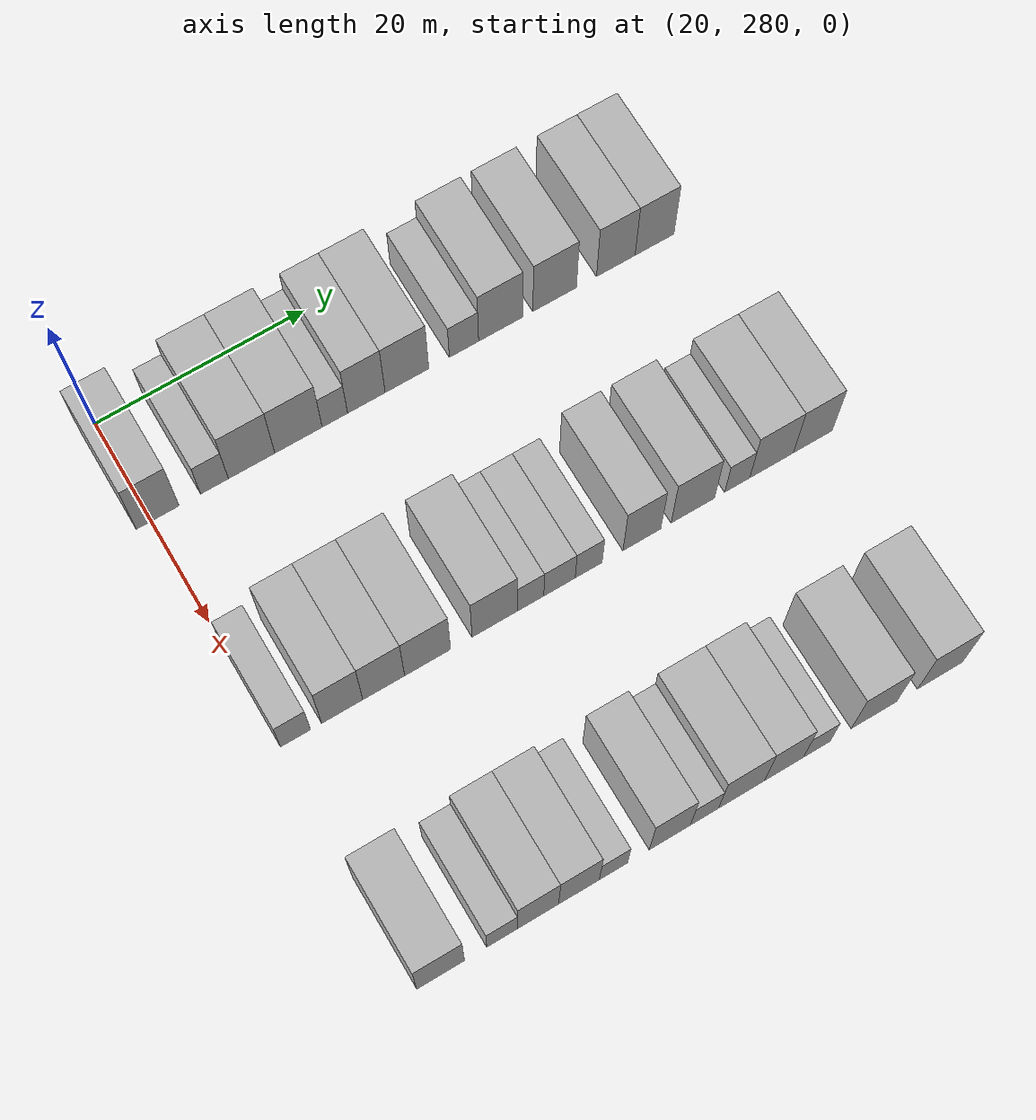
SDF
<sdf version="1.6">
 <world name="default">
  <model name="building_170">
   <static>1</static>
   <pose>25.0000 280.6387 0 0.000000 0.000000 0.000000</pose>
   <link name="link">
    <pose>0 0 4.50 0 0 0</pose>
    <collision name="collision"><geometry><box><size>10.0000 3.9963 9.0000</size></box></geometry></collision>
    <visual name="visual">
     <cast_shadows>0</cast_shadows>
     <geometry><box><size>10.0000 3.9963 9.0000</size></box></geometry>
     <material>
      <script>
       <uri>model://HANNAS_wall/materials/scripts</uri>
       <uri>model://HANNAS_wall/materials/textures</uri>
       <name>vrc/HANNAS_wall</name>
      </script>
     </material>
    </visual>
   </link>
  </model>
  <model name="building_171">
   <static>1</static>
   <pose>25.0000 285.9402 0 0.000000 0.000000 0.000000</pose>
   <link name="link">
    <pose>0 0 3.00 0 0 0</pose>
    <collision name="collision"><geometry><box><size>10.0000 2.6067 6.0000</size></box></geometry></collision>
    <visual name="visual">
     <cast_shadows>0</cast_shadows>
     <geometry><box><size>10.0000 2.6067 6.0000</size></box></geometry>
     <material>
      <script>
       <uri>model://HANNAS_wall/materials/scripts</uri>
       <uri>model://HANNAS_wall/materials/textures</uri>
       <name>vrc/HANNAS_wall</name>
      </script>
     </material>
    </visual>
   </link>
  </model>
  <model name="building_172">
   <static>1</static>
   <pose>25.0000 289.4367 0 0.000000 0.000000 0.000000</pose>
   <link name="link">
    <pose>0 0 4.50 0 0 0</pose>
    <collision name="collision"><geometry><box><size>10.0000 4.3864 9.0000</size></box></geometry></collision>
    <visual name="visual">
     <cast_shadows>0</cast_shadows>
     <geometry><box><size>10.0000 4.3864 9.0000</size></box></geometry>
     <material>
      <script>
       <uri>model://HANNAS_wall/materials/scripts</uri>
       <uri>model://HANNAS_wall/materials/textures</uri>
       <name>vrc/HANNAS_wall</name>
      </script>
     </material>
    </visual>
   </link>
  </model>
  <model name="building_173">
   <static>1</static>
   <pose>25.0000 293.8768 0 0.000000 0.000000 0.000000</pose>
   <link name="link">
    <pose>0 0 4.50 0 0 0</pose>
    <collision name="collision"><geometry><box><size>10.0000 4.4937 9.0000</size></box></geometry></collision>
    <visual name="visual">
     <cast_shadows>0</cast_shadows>
     <geometry><box><size>10.0000 4.4937 9.0000</size></box></geometry>
     <material>
      <script>
       <uri>model://HANNAS_wall/materials/scripts</uri>
       <uri>model://HANNAS_wall/materials/textures</uri>
       <name>vrc/HANNAS_wall</name>
      </script>
     </material>
    </visual>
   </link>
  </model>
  <model name="building_174">
   <static>1</static>
   <pose>25.0000 297.3408 0 0.000000 0.000000 0.000000</pose>
   <link name="link">
    <pose>0 0 3.00 0 0 0</pose>
    <collision name="collision"><geometry><box><size>10.0000 2.4344 6.0000</size></box></geometry></collision>
    <visual name="visual">
     <cast_shadows>0</cast_shadows>
     <geometry><box><size>10.0000 2.4344 6.0000</size></box></geometry>
     <material>
      <script>
       <uri>model://HANNAS_wall/materials/scripts</uri>
       <uri>model://HANNAS_wall/materials/textures</uri>
       <name>vrc/HANNAS_wall</name>
      </script>
     </material>
    </visual>
   </link>
  </model>
  <model name="building_175">
   <static>1</static>
   <pose>25.0000 300.3612 0 0.000000 0.000000 0.000000</pose>
   <link name="link">
    <pose>0 0 4.50 0 0 0</pose>
    <collision name="collision"><geometry><box><size>10.0000 3.6065 9.0000</size></box></geometry></collision>
    <visual name="visual">
     <cast_shadows>0</cast_shadows>
     <geometry><box><size>10.0000 3.6065 9.0000</size></box></geometry>
     <material>
      <script>
       <uri>model://HANNAS_wall/materials/scripts</uri>
       <uri>model://HANNAS_wall/materials/textures</uri>
       <name>vrc/HANNAS_wall</name>
      </script>
     </material>
    </visual>
   </link>
  </model>
  <model name="building_176">
   <static>1</static>
   <pose>25.0000 304.2720 0 0.000000 0.000000 0.000000</pose>
   <link name="link">
    <pose>0 0 4.50 0 0 0</pose>
    <collision name="collision"><geometry><box><size>10.0000 4.2150 9.0000</size></box></geometry></collision>
    <visual name="visual">
     <cast_shadows>0</cast_shadows>
     <geometry><box><size>10.0000 4.2150 9.0000</size></box></geometry>
     <material>
      <script>
       <uri>model://HANNAS_wall/materials/scripts</uri>
       <uri>model://HANNAS_wall/materials/textures</uri>
       <name>vrc/HANNAS_wall</name>
      </script>
     </material>
    </visual>
   </link>
  </model>
  <model name="building_177">
   <static>1</static>
   <pose>25.0000 309.8075 0 0.000000 0.000000 0.000000</pose>
   <link name="link">
    <pose>0 0 3.00 0 0 0</pose>
    <collision name="collision"><geometry><box><size>10.0000 2.8558 6.0000</size></box></geometry></collision>
    <visual name="visual">
     <cast_shadows>0</cast_shadows>
     <geometry><box><size>10.0000 2.8558 6.0000</size></box></geometry>
     <material>
      <script>
       <uri>model://HANNAS_wall/materials/scripts</uri>
       <uri>model://HANNAS_wall/materials/textures</uri>
       <name>vrc/HANNAS_wall</name>
      </script>
     </material>
    </visual>
   </link>
  </model>
  <model name="building_178">
   <static>1</static>
   <pose>25.0000 313.3999 0 0.000000 0.000000 0.000000</pose>
   <link name="link">
    <pose>0 0 4.50 0 0 0</pose>
    <collision name="collision"><geometry><box><size>10.0000 4.3290 9.0000</size></box></geometry></collision>
    <visual name="visual">
     <cast_shadows>0</cast_shadows>
     <geometry><box><size>10.0000 4.3290 9.0000</size></box></geometry>
     <material>
      <script>
       <uri>model://HANNAS_wall/materials/scripts</uri>
       <uri>model://HANNAS_wall/materials/textures</uri>
       <name>vrc/HANNAS_wall</name>
      </script>
     </material>
    </visual>
   </link>
  </model>
  <model name="building_179">
   <static>1</static>
   <pose>25.0000 318.7264 0 0.000000 0.000000 0.000000</pose>
   <link name="link">
    <pose>0 0 4.50 0 0 0</pose>
    <collision name="collision"><geometry><box><size>10.0000 4.3240 9.0000</size></box></geometry></collision>
    <visual name="visual">
     <cast_shadows>0</cast_shadows>
     <geometry><box><size>10.0000 4.3240 9.0000</size></box></geometry>
     <material>
      <script>
       <uri>model://HANNAS_wall/materials/scripts</uri>
       <uri>model://HANNAS_wall/materials/textures</uri>
       <name>vrc/HANNAS_wall</name>
      </script>
     </material>
    </visual>
   </link>
  </model>
  <model name="building_180">
   <static>1</static>
   <pose>25.0000 324.8200 0 0.000000 0.000000 0.000000</pose>
   <link name="link">
    <pose>0 0 4.50 0 0 0</pose>
    <collision name="collision"><geometry><box><size>10.0000 3.8633 9.0000</size></box></geometry></collision>
    <visual name="visual">
     <cast_shadows>0</cast_shadows>
     <geometry><box><size>10.0000 3.8633 9.0000</size></box></geometry>
     <material>
      <script>
       <uri>model://HANNAS_wall/materials/scripts</uri>
       <uri>model://HANNAS_wall/materials/textures</uri>
       <name>vrc/HANNAS_wall</name>
      </script>
     </material>
    </visual>
   </link>
  </model>
  <model name="building_181">
   <static>1</static>
   <pose>25.0000 328.7062 0 0.000000 0.000000 0.000000</pose>
   <link name="link">
    <pose>0 0 4.50 0 0 0</pose>
    <collision name="collision"><geometry><box><size>10.0000 3.9090 9.0000</size></box></geometry></collision>
    <visual name="visual">
     <cast_shadows>0</cast_shadows>
     <geometry><box><size>10.0000 3.9090 9.0000</size></box></geometry>
     <material>
      <script>
       <uri>model://HANNAS_wall/materials/scripts</uri>
       <uri>model://HANNAS_wall/materials/textures</uri>
       <name>vrc/HANNAS_wall</name>
      </script>
     </material>
    </visual>
   </link>
  </model>
  <model name="building_354">
   <static>1</static>
   <pose>47.0000 281.3577 0 0.000000 0.000000 0.000000</pose>
   <link name="link">
    <pose>0 0 3.00 0 0 0</pose>
    <collision name="collision"><geometry><box><size>10.0000 2.7425 6.0000</size></box></geometry></collision>
    <visual name="visual">
     <cast_shadows>0</cast_shadows>
     <geometry><box><size>10.0000 2.7425 6.0000</size></box></geometry>
     <material>
      <script>
       <uri>model://HANNAS_wall/materials/scripts</uri>
       <uri>model://HANNAS_wall/materials/textures</uri>
       <name>vrc/HANNAS_wall</name>
      </script>
     </material>
    </visual>
   </link>
  </model>
  <model name="building_355">
   <static>1</static>
   <pose>47.0000 285.6176 0 0.000000 0.000000 0.000000</pose>
   <link name="link">
    <pose>0 0 4.50 0 0 0</pose>
    <collision name="collision"><geometry><box><size>10.0000 3.7772 9.0000</size></box></geometry></collision>
    <visual name="visual">
     <cast_shadows>0</cast_shadows>
     <geometry><box><size>10.0000 3.7772 9.0000</size></box></geometry>
     <material>
      <script>
       <uri>model://HANNAS_wall/materials/scripts</uri>
       <uri>model://HANNAS_wall/materials/textures</uri>
       <name>vrc/HANNAS_wall</name>
      </script>
     </material>
    </visual>
   </link>
  </model>
  <model name="building_356">
   <static>1</static>
   <pose>47.0000 289.4388 0 0.000000 0.000000 0.000000</pose>
   <link name="link">
    <pose>0 0 4.50 0 0 0</pose>
    <collision name="collision"><geometry><box><size>10.0000 3.8653 9.0000</size></box></geometry></collision>
    <visual name="visual">
     <cast_shadows>0</cast_shadows>
     <geometry><box><size>10.0000 3.8653 9.0000</size></box></geometry>
     <material>
      <script>
       <uri>model://HANNAS_wall/materials/scripts</uri>
       <uri>model://HANNAS_wall/materials/textures</uri>
       <name>vrc/HANNAS_wall</name>
      </script>
     </material>
    </visual>
   </link>
  </model>
  <model name="building_357">
   <static>1</static>
   <pose>47.0000 293.5072 0 0.000000 0.000000 0.000000</pose>
   <link name="link">
    <pose>0 0 4.50 0 0 0</pose>
    <collision name="collision"><geometry><box><size>10.0000 4.2714 9.0000</size></box></geometry></collision>
    <visual name="visual">
     <cast_shadows>0</cast_shadows>
     <geometry><box><size>10.0000 4.2714 9.0000</size></box></geometry>
     <material>
      <script>
       <uri>model://HANNAS_wall/materials/scripts</uri>
       <uri>model://HANNAS_wall/materials/textures</uri>
       <name>vrc/HANNAS_wall</name>
      </script>
     </material>
    </visual>
   </link>
  </model>
  <model name="building_358">
   <static>1</static>
   <pose>47.0000 299.7740 0 0.000000 0.000000 0.000000</pose>
   <link name="link">
    <pose>0 0 4.50 0 0 0</pose>
    <collision name="collision"><geometry><box><size>10.0000 4.2620 9.0000</size></box></geometry></collision>
    <visual name="visual">
     <cast_shadows>0</cast_shadows>
     <geometry><box><size>10.0000 4.2620 9.0000</size></box></geometry>
     <material>
      <script>
       <uri>model://HANNAS_wall/materials/scripts</uri>
       <uri>model://HANNAS_wall/materials/textures</uri>
       <name>vrc/HANNAS_wall</name>
      </script>
     </material>
    </visual>
   </link>
  </model>
  <model name="building_359">
   <static>1</static>
   <pose>47.0000 303.1532 0 0.000000 0.000000 0.000000</pose>
   <link name="link">
    <pose>0 0 3.00 0 0 0</pose>
    <collision name="collision"><geometry><box><size>10.0000 2.4964 6.0000</size></box></geometry></collision>
    <visual name="visual">
     <cast_shadows>0</cast_shadows>
     <geometry><box><size>10.0000 2.4964 6.0000</size></box></geometry>
     <material>
      <script>
       <uri>model://HANNAS_wall/materials/scripts</uri>
       <uri>model://HANNAS_wall/materials/textures</uri>
       <name>vrc/HANNAS_wall</name>
      </script>
     </material>
    </visual>
   </link>
  </model>
  <model name="building_360">
   <static>1</static>
   <pose>47.0000 305.8969 0 0.000000 0.000000 0.000000</pose>
   <link name="link">
    <pose>0 0 3.00 0 0 0</pose>
    <collision name="collision"><geometry><box><size>10.0000 2.9911 6.0000</size></box></geometry></collision>
    <visual name="visual">
     <cast_shadows>0</cast_shadows>
     <geometry><box><size>10.0000 2.9911 6.0000</size></box></geometry>
     <material>
      <script>
       <uri>model://HANNAS_wall/materials/scripts</uri>
       <uri>model://HANNAS_wall/materials/textures</uri>
       <name>vrc/HANNAS_wall</name>
      </script>
     </material>
    </visual>
   </link>
  </model>
  <model name="building_361">
   <static>1</static>
   <pose>47.0000 308.6741 0 0.000000 0.000000 0.000000</pose>
   <link name="link">
    <pose>0 0 3.00 0 0 0</pose>
    <collision name="collision"><geometry><box><size>10.0000 2.5633 6.0000</size></box></geometry></collision>
    <visual name="visual">
     <cast_shadows>0</cast_shadows>
     <geometry><box><size>10.0000 2.5633 6.0000</size></box></geometry>
     <material>
      <script>
       <uri>model://HANNAS_wall/materials/scripts</uri>
       <uri>model://HANNAS_wall/materials/textures</uri>
       <name>vrc/HANNAS_wall</name>
      </script>
     </material>
    </visual>
   </link>
  </model>
  <model name="building_362">
   <static>1</static>
   <pose>47.0000 313.7759 0 0.000000 0.000000 0.000000</pose>
   <link name="link">
    <pose>0 0 4.50 0 0 0</pose>
    <collision name="collision"><geometry><box><size>10.0000 3.6403 9.0000</size></box></geometry></collision>
    <visual name="visual">
     <cast_shadows>0</cast_shadows>
     <geometry><box><size>10.0000 3.6403 9.0000</size></box></geometry>
     <material>
      <script>
       <uri>model://HANNAS_wall/materials/scripts</uri>
       <uri>model://HANNAS_wall/materials/textures</uri>
       <name>vrc/HANNAS_wall</name>
      </script>
     </material>
    </visual>
   </link>
  </model>
  <model name="building_363">
   <static>1</static>
   <pose>47.0000 318.7058 0 0.000000 0.000000 0.000000</pose>
   <link name="link">
    <pose>0 0 4.50 0 0 0</pose>
    <collision name="collision"><geometry><box><size>10.0000 4.2194 9.0000</size></box></geometry></collision>
    <visual name="visual">
     <cast_shadows>0</cast_shadows>
     <geometry><box><size>10.0000 4.2194 9.0000</size></box></geometry>
     <material>
      <script>
       <uri>model://HANNAS_wall/materials/scripts</uri>
       <uri>model://HANNAS_wall/materials/textures</uri>
       <name>vrc/HANNAS_wall</name>
      </script>
     </material>
    </visual>
   </link>
  </model>
  <model name="building_364">
   <static>1</static>
   <pose>47.0000 323.0400 0 0.000000 0.000000 0.000000</pose>
   <link name="link">
    <pose>0 0 3.00 0 0 0</pose>
    <collision name="collision"><geometry><box><size>10.0000 2.4490 6.0000</size></box></geometry></collision>
    <visual name="visual">
     <cast_shadows>0</cast_shadows>
     <geometry><box><size>10.0000 2.4490 6.0000</size></box></geometry>
     <material>
      <script>
       <uri>model://HANNAS_wall/materials/scripts</uri>
       <uri>model://HANNAS_wall/materials/textures</uri>
       <name>vrc/HANNAS_wall</name>
      </script>
     </material>
    </visual>
   </link>
  </model>
  <model name="building_365">
   <static>1</static>
   <pose>47.0000 326.4119 0 0.000000 0.000000 0.000000</pose>
   <link name="link">
    <pose>0 0 4.50 0 0 0</pose>
    <collision name="collision"><geometry><box><size>10.0000 4.2950 9.0000</size></box></geometry></collision>
    <visual name="visual">
     <cast_shadows>0</cast_shadows>
     <geometry><box><size>10.0000 4.2950 9.0000</size></box></geometry>
     <material>
      <script>
       <uri>model://HANNAS_wall/materials/scripts</uri>
       <uri>model://HANNAS_wall/materials/textures</uri>
       <name>vrc/HANNAS_wall</name>
      </script>
     </material>
    </visual>
   </link>
  </model>
  <model name="building_366">
   <static>1</static>
   <pose>47.0000 330.4872 0 0.000000 0.000000 0.000000</pose>
   <link name="link">
    <pose>0 0 4.50 0 0 0</pose>
    <collision name="collision"><geometry><box><size>10.0000 3.8557 9.0000</size></box></geometry></collision>
    <visual name="visual">
     <cast_shadows>0</cast_shadows>
     <geometry><box><size>10.0000 3.8557 9.0000</size></box></geometry>
     <material>
      <script>
       <uri>model://HANNAS_wall/materials/scripts</uri>
       <uri>model://HANNAS_wall/materials/textures</uri>
       <name>vrc/HANNAS_wall</name>
      </script>
     </material>
    </visual>
   </link>
  </model>
  <model name="building_549">
   <static>1</static>
   <pose>69.0000 281.9025 0 0.000000 0.000000 0.000000</pose>
   <link name="link">
    <pose>0 0 4.50 0 0 0</pose>
    <collision name="collision"><geometry><box><size>10.0000 4.2386 9.0000</size></box></geometry></collision>
    <visual name="visual">
     <cast_shadows>0</cast_shadows>
     <geometry><box><size>10.0000 4.2386 9.0000</size></box></geometry>
     <material>
      <script>
       <uri>model://HANNAS_wall/materials/scripts</uri>
       <uri>model://HANNAS_wall/materials/textures</uri>
       <name>vrc/HANNAS_wall</name>
      </script>
     </material>
    </visual>
   </link>
  </model>
  <model name="building_550">
   <static>1</static>
   <pose>69.0000 287.4011 0 0.000000 0.000000 0.000000</pose>
   <link name="link">
    <pose>0 0 3.00 0 0 0</pose>
    <collision name="collision"><geometry><box><size>10.0000 2.7585 6.0000</size></box></geometry></collision>
    <visual name="visual">
     <cast_shadows>0</cast_shadows>
     <geometry><box><size>10.0000 2.7585 6.0000</size></box></geometry>
     <material>
      <script>
       <uri>model://HANNAS_wall/materials/scripts</uri>
       <uri>model://HANNAS_wall/materials/textures</uri>
       <name>vrc/HANNAS_wall</name>
      </script>
     </material>
    </visual>
   </link>
  </model>
  <model name="building_551">
   <static>1</static>
   <pose>69.0000 290.6432 0 0.000000 0.000000 0.000000</pose>
   <link name="link">
    <pose>0 0 4.50 0 0 0</pose>
    <collision name="collision"><geometry><box><size>10.0000 3.7257 9.0000</size></box></geometry></collision>
    <visual name="visual">
     <cast_shadows>0</cast_shadows>
     <geometry><box><size>10.0000 3.7257 9.0000</size></box></geometry>
     <material>
      <script>
       <uri>model://HANNAS_wall/materials/scripts</uri>
       <uri>model://HANNAS_wall/materials/textures</uri>
       <name>vrc/HANNAS_wall</name>
      </script>
     </material>
    </visual>
   </link>
  </model>
  <model name="building_552">
   <static>1</static>
   <pose>69.0000 294.3589 0 0.000000 0.000000 0.000000</pose>
   <link name="link">
    <pose>0 0 4.50 0 0 0</pose>
    <collision name="collision"><geometry><box><size>10.0000 3.7056 9.0000</size></box></geometry></collision>
    <visual name="visual">
     <cast_shadows>0</cast_shadows>
     <geometry><box><size>10.0000 3.7056 9.0000</size></box></geometry>
     <material>
      <script>
       <uri>model://HANNAS_wall/materials/scripts</uri>
       <uri>model://HANNAS_wall/materials/textures</uri>
       <name>vrc/HANNAS_wall</name>
      </script>
     </material>
    </visual>
   </link>
  </model>
  <model name="building_553">
   <static>1</static>
   <pose>69.0000 297.5087 0 0.000000 0.000000 0.000000</pose>
   <link name="link">
    <pose>0 0 3.00 0 0 0</pose>
    <collision name="collision"><geometry><box><size>10.0000 2.5940 6.0000</size></box></geometry></collision>
    <visual name="visual">
     <cast_shadows>0</cast_shadows>
     <geometry><box><size>10.0000 2.5940 6.0000</size></box></geometry>
     <material>
      <script>
       <uri>model://HANNAS_wall/materials/scripts</uri>
       <uri>model://HANNAS_wall/materials/textures</uri>
       <name>vrc/HANNAS_wall</name>
      </script>
     </material>
    </visual>
   </link>
  </model>
  <model name="building_554">
   <static>1</static>
   <pose>69.0000 302.7096 0 0.000000 0.000000 0.000000</pose>
   <link name="link">
    <pose>0 0 4.50 0 0 0</pose>
    <collision name="collision"><geometry><box><size>10.0000 3.8078 9.0000</size></box></geometry></collision>
    <visual name="visual">
     <cast_shadows>0</cast_shadows>
     <geometry><box><size>10.0000 3.8078 9.0000</size></box></geometry>
     <material>
      <script>
       <uri>model://HANNAS_wall/materials/scripts</uri>
       <uri>model://HANNAS_wall/materials/textures</uri>
       <name>vrc/HANNAS_wall</name>
      </script>
     </material>
    </visual>
   </link>
  </model>
  <model name="building_555">
   <static>1</static>
   <pose>69.0000 305.9192 0 0.000000 0.000000 0.000000</pose>
   <link name="link">
    <pose>0 0 3.00 0 0 0</pose>
    <collision name="collision"><geometry><box><size>10.0000 2.6115 6.0000</size></box></geometry></collision>
    <visual name="visual">
     <cast_shadows>0</cast_shadows>
     <geometry><box><size>10.0000 2.6115 6.0000</size></box></geometry>
     <material>
      <script>
       <uri>model://HANNAS_wall/materials/scripts</uri>
       <uri>model://HANNAS_wall/materials/textures</uri>
       <name>vrc/HANNAS_wall</name>
      </script>
     </material>
    </visual>
   </link>
  </model>
  <model name="building_556">
   <static>1</static>
   <pose>69.0000 309.3774 0 0.000000 0.000000 0.000000</pose>
   <link name="link">
    <pose>0 0 4.50 0 0 0</pose>
    <collision name="collision"><geometry><box><size>10.0000 4.3049 9.0000</size></box></geometry></collision>
    <visual name="visual">
     <cast_shadows>0</cast_shadows>
     <geometry><box><size>10.0000 4.3049 9.0000</size></box></geometry>
     <material>
      <script>
       <uri>model://HANNAS_wall/materials/scripts</uri>
       <uri>model://HANNAS_wall/materials/textures</uri>
       <name>vrc/HANNAS_wall</name>
      </script>
     </material>
    </visual>
   </link>
  </model>
  <model name="building_557">
   <static>1</static>
   <pose>69.0000 313.3724 0 0.000000 0.000000 0.000000</pose>
   <link name="link">
    <pose>0 0 4.50 0 0 0</pose>
    <collision name="collision"><geometry><box><size>10.0000 3.6852 9.0000</size></box></geometry></collision>
    <visual name="visual">
     <cast_shadows>0</cast_shadows>
     <geometry><box><size>10.0000 3.6852 9.0000</size></box></geometry>
     <material>
      <script>
       <uri>model://HANNAS_wall/materials/scripts</uri>
       <uri>model://HANNAS_wall/materials/textures</uri>
       <name>vrc/HANNAS_wall</name>
      </script>
     </material>
    </visual>
   </link>
  </model>
  <model name="building_558">
   <static>1</static>
   <pose>69.0000 316.4869 0 0.000000 0.000000 0.000000</pose>
   <link name="link">
    <pose>0 0 3.00 0 0 0</pose>
    <collision name="collision"><geometry><box><size>10.0000 2.5439 6.0000</size></box></geometry></collision>
    <visual name="visual">
     <cast_shadows>0</cast_shadows>
     <geometry><box><size>10.0000 2.5439 6.0000</size></box></geometry>
     <material>
      <script>
       <uri>model://HANNAS_wall/materials/scripts</uri>
       <uri>model://HANNAS_wall/materials/textures</uri>
       <name>vrc/HANNAS_wall</name>
      </script>
     </material>
    </visual>
   </link>
  </model>
  <model name="building_559">
   <static>1</static>
   <pose>69.0000 321.9394 0 0.000000 0.000000 0.000000</pose>
   <link name="link">
    <pose>0 0 4.50 0 0 0</pose>
    <collision name="collision"><geometry><box><size>10.0000 4.3613 9.0000</size></box></geometry></collision>
    <visual name="visual">
     <cast_shadows>0</cast_shadows>
     <geometry><box><size>10.0000 4.3613 9.0000</size></box></geometry>
     <material>
      <script>
       <uri>model://HANNAS_wall/materials/scripts</uri>
       <uri>model://HANNAS_wall/materials/textures</uri>
       <name>vrc/HANNAS_wall</name>
      </script>
     </material>
    </visual>
   </link>
  </model>
  <model name="building_560">
   <static>1</static>
   <pose>69.0000 328.3080 0 0.000000 0.000000 0.000000</pose>
   <link name="link">
    <pose>0 0 4.50 0 0 0</pose>
    <collision name="collision"><geometry><box><size>10.0000 4.3758 9.0000</size></box></geometry></collision>
    <visual name="visual">
     <cast_shadows>0</cast_shadows>
     <geometry><box><size>10.0000 4.3758 9.0000</size></box></geometry>
     <material>
      <script>
       <uri>model://HANNAS_wall/materials/scripts</uri>
       <uri>model://HANNAS_wall/materials/textures</uri>
       <name>vrc/HANNAS_wall</name>
      </script>
     </material>
    </visual>
   </link>
  </model>
 </world>
</sdf>
